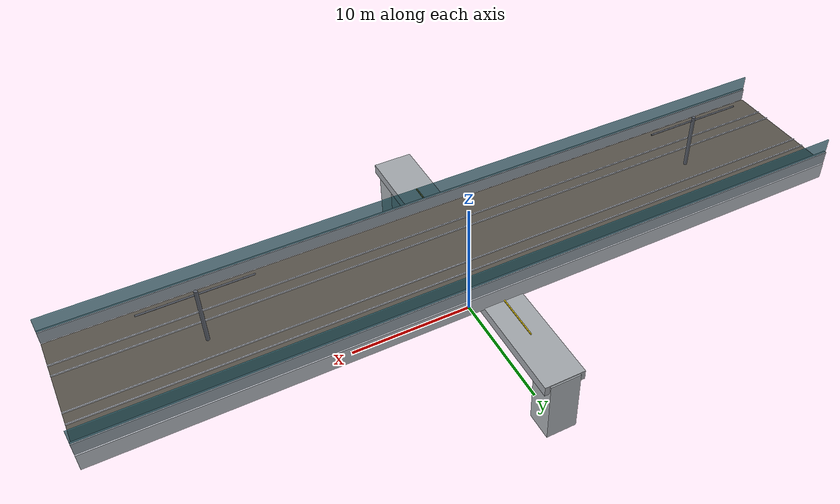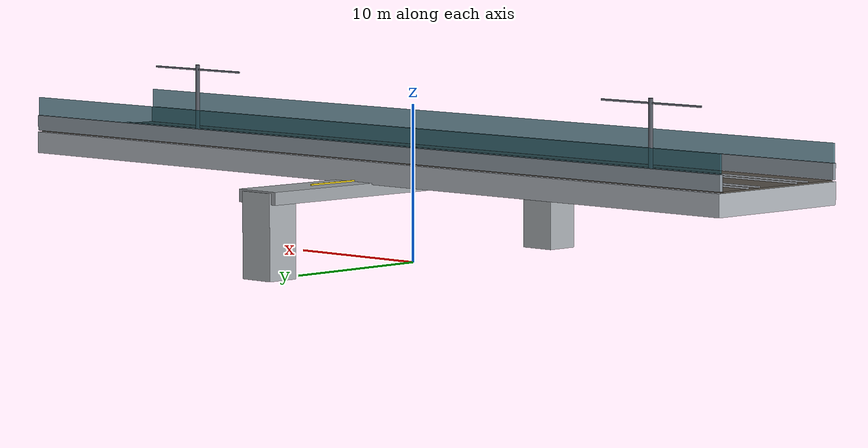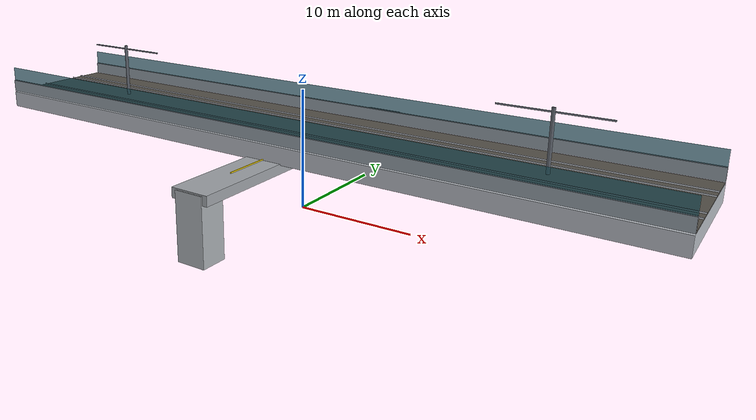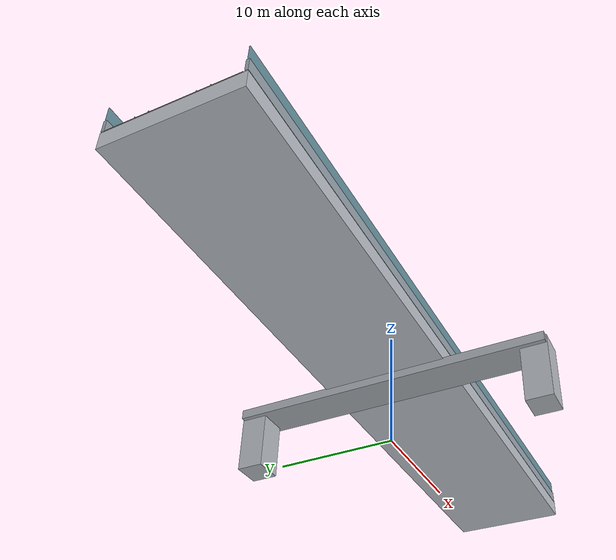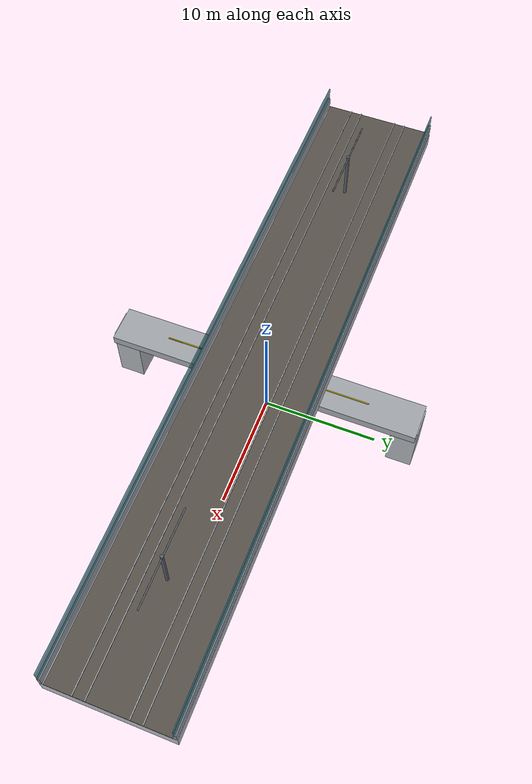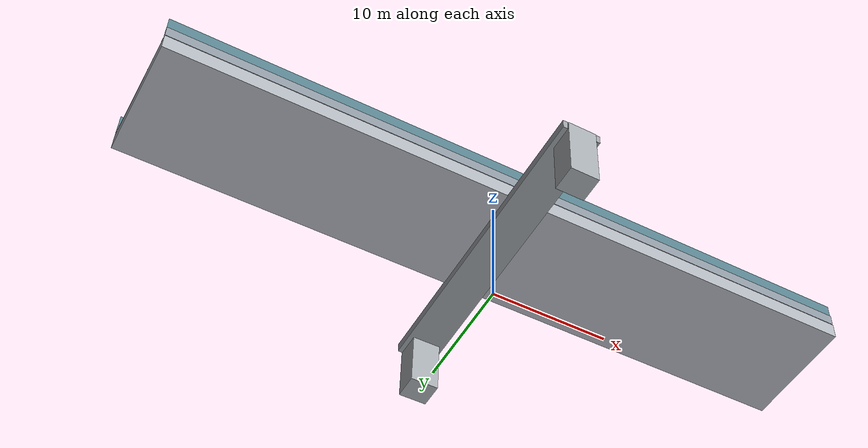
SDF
<?xml version="1.0" ?>
<sdf version="1.8">
  <model name="railway_viaduct">
    <static>true</static>
    <link name="viaduct_link">

      <!-- ==================== 物理碰撞剛體 (橋墩位於兩側人行道外，橋下淨空 5.4m) ==================== -->
      <!-- 左側/西側混凝土雙柱式橋墩碰撞剛體 (West Pier Column) -->
      <collision name="pier_west_col">
        <pose>-1.6 -12.5 2.7 0 0 0</pose>
        <geometry><box><size>1.6 2.2 5.4</size></box></geometry>
      </collision>

      <!-- 右側/東側混凝土雙柱式橋墩碰撞剛體 (East Pier Column) -->
      <collision name="pier_east_col">
        <pose>-1.6 12.5 2.7 0 0 0</pose>
        <geometry><box><size>1.6 2.2 5.4</size></box></geometry>
      </collision>

      <!-- 高架連續箱梁主橋面碰撞剛體 (底面 Z=5.4m，頂面 Z=6.8m，淨空 5.4m > 4.8m) -->
      <collision name="girder_deck_col">
        <pose>-1.0 0 6.1 0 0 0</pose>
        <geometry><box><size>57.0 10.5 1.4</size></box></geometry>
      </collision>

      <!-- ==================== 視覺呈現：鋼筋混凝土橋墩與橫樑 (Concrete Piers & Crossbeam) ==================== -->
      <!-- 西側橋墩基礎與柱體 -->
      <visual name="pier_west_vis">
        <pose>0 -12.5 2.7 0 0 0</pose>
        <geometry><box><size>2.4 2.2 5.4</size></box></geometry>
        <material>
          <ambient>0.62 0.64 0.66 1</ambient>
          <diffuse>0.68 0.70 0.72 1</diffuse>
        </material>
      </visual>

      <!-- 東側橋墩基礎與柱體 -->
      <visual name="pier_east_vis">
        <pose>0 12.5 2.7 0 0 0</pose>
        <geometry><box><size>2.4 2.2 5.4</size></box></geometry>
        <material>
          <ambient>0.62 0.64 0.66 1</ambient>
          <diffuse>0.68 0.70 0.72 1</diffuse>
        </material>
      </visual>

      <!-- T 型蓋樑與橫向支承橫樑 (Hammerhead Pier Cap Beam) -->
      <visual name="cap_beam_vis">
        <pose>0 0 5.1 0 0 0</pose>
        <geometry><box><size>3.2 27.0 0.8</size></box></geometry>
        <material>
          <ambient>0.58 0.60 0.62 1</ambient>
          <diffuse>0.64 0.66 0.68 1</diffuse>
        </material>
      </visual>

      <!-- ==================== 視覺呈現：連續預力混凝土箱梁 (Concrete Box Girder) ==================== -->
      <visual name="girder_deck_vis">
        <pose>0 0 6.1 0 0 0</pose>
        <geometry><box><size>60.0 10.5 1.4</size></box></geometry>
        <material>
          <ambient>0.65 0.67 0.70 1</ambient>
          <diffuse>0.72 0.74 0.77 1</diffuse>
        </material>
      </visual>

      <!-- 梁底防撞淨高標誌與黃黑斜紋警示反光貼條 (Underbridge Hazard Stripes & 4.8m Warning) -->
      <!-- 位於橋跨下方跨越關新路車道正面 (Z = 5.4m) -->
      <visual name="hazard_stripes_s">
        <pose>-0.05 0 5.42 0 0 0</pose>
        <geometry><box><size>0.08 18.0 0.35</size></box></geometry>
        <material>
          <ambient>0.92 0.80 0.05 1</ambient>
          <diffuse>0.98 0.85 0.08 1</diffuse>
          <emissive>0.3 0.25 0.0 1</emissive>
        </material>
      </visual>

      <!-- 限高標誌牌：限高 4.8 公尺 (Clearance Sign: 4.8m) -->
      <visual name="clearance_sign">
        <pose>-0.10 0 5.8 0 0 0</pose>
        <geometry><cylinder><radius>0.45</radius><length>0.06</length></cylinder></geometry>
        <material>
          <ambient>0.9 0.1 0.1 1</ambient>
          <diffuse>0.95 0.12 0.12 1</diffuse>
        </material>
      </visual>
      <visual name="clearance_sign_inner">
        <pose>-0.12 0 5.8 0 0 0</pose>
        <geometry><cylinder><radius>0.35</radius><length>0.06</length></cylinder></geometry>
        <material>
          <ambient>0.95 0.95 0.95 1</ambient>
          <diffuse>0.98 0.98 0.98 1</diffuse>
        </material>
      </visual>

      <!-- ==================== 視覺呈現：軌道、道碴與鋼軌 (Ballast Bed & Dual Tracks) ==================== -->
      <!-- 鐵路道碴碎石床 (Ballast Bed) -->
      <visual name="ballast_bed_vis">
        <pose>0 0 6.85 0 0 0</pose>
        <geometry><box><size>60.0 9.8 0.10</size></box></geometry>
        <material>
          <ambient>0.30 0.28 0.26 1</ambient>
          <diffuse>0.35 0.33 0.30 1</diffuse>
        </material>
      </visual>

      <!-- 左線鋼軌 (Track 1 Rails: Y = -2.2m) -->
      <visual name="track1_rail_l"><pose>0 -2.7 6.95 0 0 0</pose><geometry><box><size>60.0 0.07 0.10</size></box></geometry><material><ambient>0.75 0.77 0.8 1</ambient><diffuse>0.82 0.84 0.88 1</diffuse></material></visual>
      <visual name="track1_rail_r"><pose>0 -1.7 6.95 0 0 0</pose><geometry><box><size>60.0 0.07 0.10</size></box></geometry><material><ambient>0.75 0.77 0.8 1</ambient><diffuse>0.82 0.84 0.88 1</diffuse></material></visual>

      <!-- 右線鋼軌 (Track 2 Rails: Y = +2.2m) -->
      <visual name="track2_rail_l"><pose>0 1.7 6.95 0 0 0</pose><geometry><box><size>60.0 0.07 0.10</size></box></geometry><material><ambient>0.75 0.77 0.8 1</ambient><diffuse>0.82 0.84 0.88 1</diffuse></material></visual>
      <visual name="track2_rail_r"><pose>0 2.7 6.95 0 0 0</pose><geometry><box><size>60.0 0.07 0.10</size></box></geometry><material><ambient>0.75 0.77 0.8 1</ambient><diffuse>0.82 0.84 0.88 1</diffuse></material></visual>

      <!-- ==================== 視覺呈現：高架橋兩側吸音隔音牆 (Acoustic Noise Barriers) ==================== -->
      <!-- 採用台灣鐵道經典之「金屬吸音板下段 + 鋼化壓克力透明採光窗上段」複合隔音牆 -->
      <!-- 南側隔音牆 (South Noise Barrier) -->
      <visual name="barrier_s_base">
        <pose>0 -5.1 7.4 0 0 0</pose>
        <geometry><box><size>60.0 0.25 1.0</size></box></geometry>
        <material><ambient>0.50 0.55 0.58 1</ambient><diffuse>0.58 0.62 0.66 1</diffuse></material>
      </visual>
      <visual name="barrier_s_acrylic">
        <pose>0 -5.1 8.5 0 0 0</pose>
        <geometry><box><size>60.0 0.08 1.2</size></box></geometry>
        <material>
          <ambient>0.15 0.35 0.40 0.75</ambient>
          <diffuse>0.20 0.45 0.50 0.75</diffuse>
          <specular>0.8 0.9 0.95 1</specular>
        </material>
      </visual>

      <!-- 北側隔音牆 (North Noise Barrier) -->
      <visual name="barrier_n_base">
        <pose>0 5.1 7.4 0 0 0</pose>
        <geometry><box><size>60.0 0.25 1.0</size></box></geometry>
        <material><ambient>0.50 0.55 0.58 1</ambient><diffuse>0.58 0.62 0.66 1</diffuse></material>
      </visual>
      <visual name="barrier_n_acrylic">
        <pose>0 5.1 8.5 0 0 0</pose>
        <geometry><box><size>60.0 0.08 1.2</size></box></geometry>
        <material>
          <ambient>0.15 0.35 0.40 0.75</ambient>
          <diffuse>0.20 0.45 0.50 0.75</diffuse>
          <specular>0.8 0.9 0.95 1</specular>
        </material>
      </visual>

      <!-- ==================== 視覺呈現：電車線支柱與懸臂 (Catenary Masts & Cantilevers) ==================== -->
      <visual name="catenary_mast_w">
        <pose>-20.0 0 9.2 0 0 0</pose>
        <geometry><cylinder><radius>0.14</radius><length>4.6</length></cylinder></geometry>
        <material><ambient>0.3 0.32 0.35 1</ambient><diffuse>0.36 0.38 0.42 1</diffuse></material>
      </visual>
      <visual name="catenary_arm_w">
        <pose>-20.0 0 11.2 0 1.5707963 0</pose>
        <geometry><cylinder><radius>0.06</radius><length>8.0</length></cylinder></geometry>
        <material><ambient>0.3 0.32 0.35 1</ambient><diffuse>0.36 0.38 0.42 1</diffuse></material>
      </visual>

      <visual name="catenary_mast_e">
        <pose>20.0 0 9.2 0 0 0</pose>
        <geometry><cylinder><radius>0.14</radius><length>4.6</length></cylinder></geometry>
        <material><ambient>0.3 0.32 0.35 1</ambient><diffuse>0.36 0.38 0.42 1</diffuse></material>
      </visual>
      <visual name="catenary_arm_e">
        <pose>20.0 0 11.2 0 1.5707963 0</pose>
        <geometry><cylinder><radius>0.06</radius><length>8.0</length></cylinder></geometry>
        <material><ambient>0.3 0.32 0.35 1</ambient><diffuse>0.36 0.38 0.42 1</diffuse></material>
      </visual>

    </link>
  </model>
</sdf>
